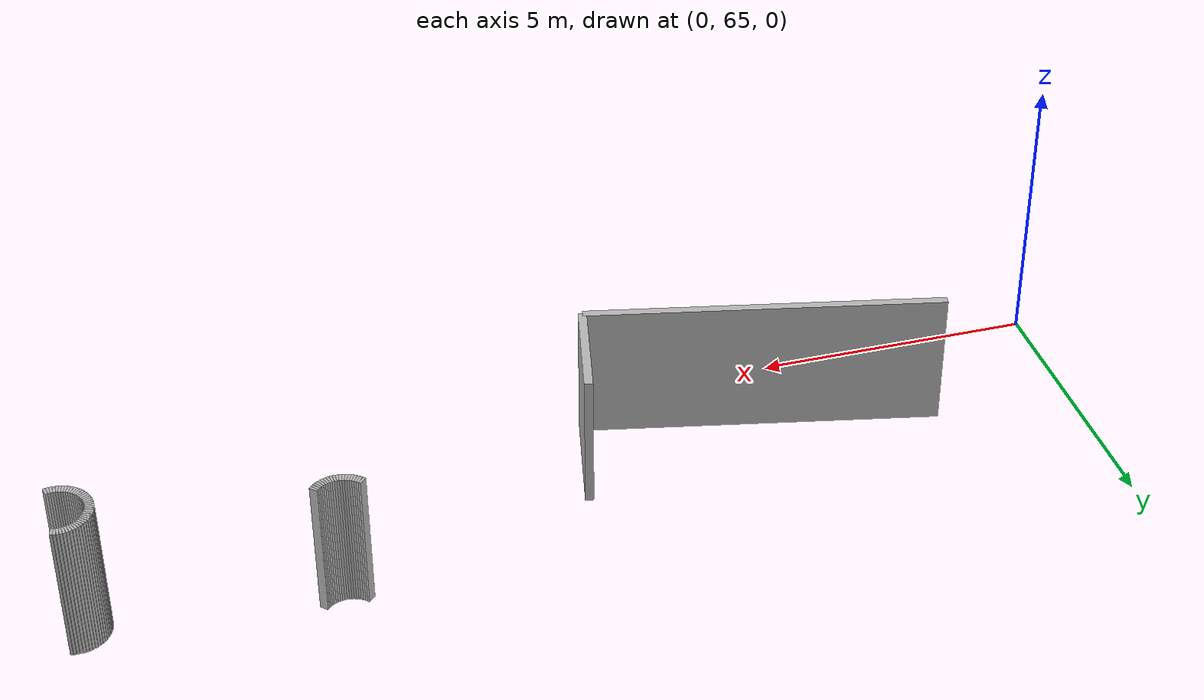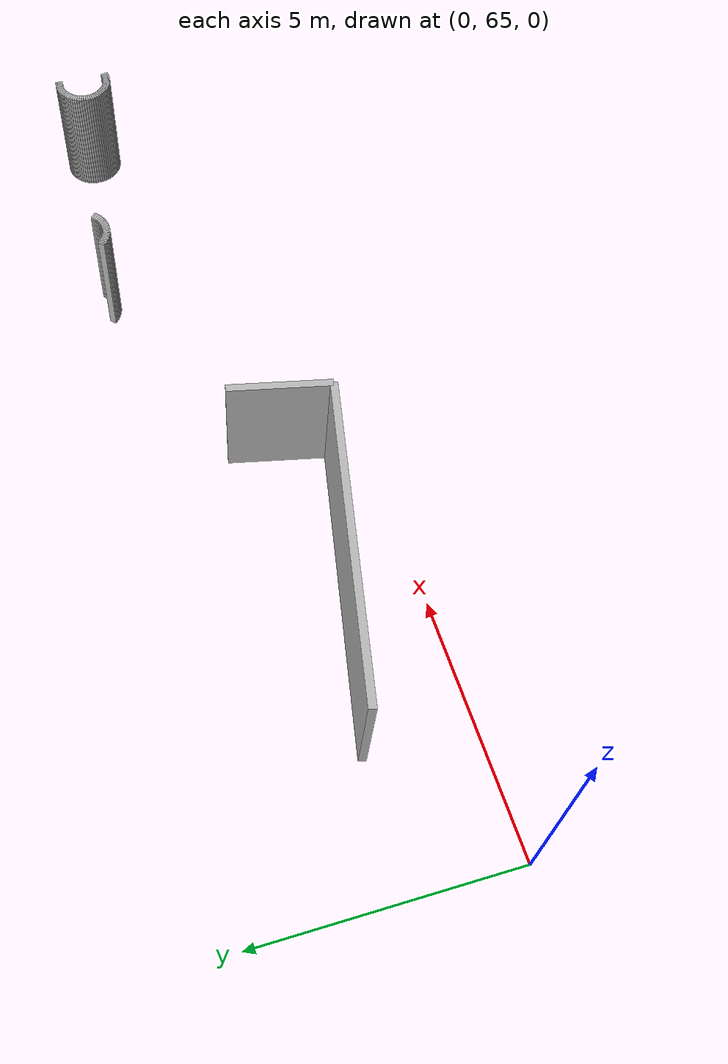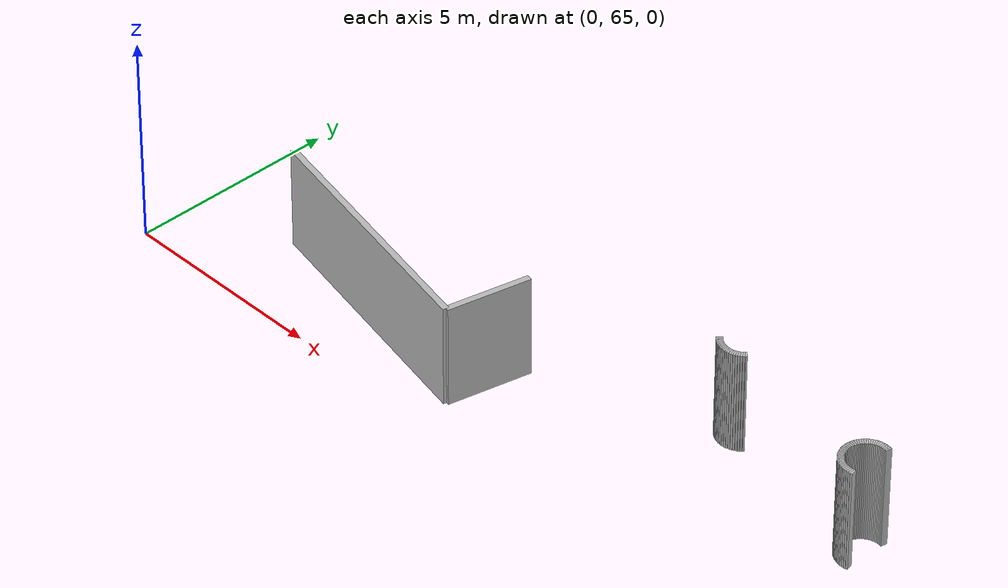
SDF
<sdf version="1.6">
 <model name="sps_1002">
  <static>1</static>
  <allow_auto_disable>0</allow_auto_disable>
  <link name="Wall810">
   <collision name="collision"><geometry><box><size>0.0454476 0.15 2.5</size></box></geometry></collision>
   <visual name="visual">
    <geometry><box><size>0.0454476 0.15 2.5</size></box></geometry>
    <transparency>0.0</transparency>
   </visual>
   <pose>18.0326 68.093 1.25 0 0 -2.92365</pose>
  </link>
  <link name="Wall811">
   <collision name="collision"><geometry><box><size>0.0453551 0.15 2.5</size></box></geometry></collision>
   <visual name="visual">
    <geometry><box><size>0.0453551 0.15 2.5</size></box></geometry>
    <transparency>0.0</transparency>
   </visual>
   <pose>17.988 68.0852 1.25 0 0 -3.0134</pose>
  </link>
  <link name="Wall812">
   <collision name="collision"><geometry><box><size>0.0454548 0.15 2.5</size></box></geometry></collision>
   <visual name="visual">
    <geometry><box><size>0.0454548 0.15 2.5</size></box></geometry>
    <transparency>0.0</transparency>
   </visual>
   <pose>17.9428 68.0813 1.25 0 0 -3.09727</pose>
  </link>
  <link name="Wall813">
   <collision name="collision"><geometry><box><size>0.0452719 0.15 2.5</size></box></geometry></collision>
   <visual name="visual">
    <geometry><box><size>0.0452719 0.15 2.5</size></box></geometry>
    <transparency>0.0</transparency>
   </visual>
   <pose>17.8975 68.0813 1.25 0 -0 3.09709</pose>
  </link>
  <link name="Wall814">
   <collision name="collision"><geometry><box><size>0.0453788 0.15 2.5</size></box></geometry></collision>
   <visual name="visual">
    <geometry><box><size>0.0453788 0.15 2.5</size></box></geometry>
    <transparency>0.0</transparency>
   </visual>
   <pose>17.8523 68.0853 1.25 0 -0 3.0094</pose>
  </link>
  <link name="Wall815">
   <collision name="collision"><geometry><box><size>0.0454476 0.15 2.5</size></box></geometry></collision>
   <visual name="visual">
    <geometry><box><size>0.0454476 0.15 2.5</size></box></geometry>
    <transparency>0.0</transparency>
   </visual>
   <pose>17.8077 68.0932 1.25 0 -0 2.92365</pose>
  </link>
  <link name="Wall816">
   <collision name="collision"><geometry><box><size>0.0453057 0.15 2.5</size></box></geometry></collision>
   <visual name="visual">
    <geometry><box><size>0.0453057 0.15 2.5</size></box></geometry>
    <transparency>0.0</transparency>
   </visual>
   <pose>17.7639 68.1049 1.25 0 -0 2.83646</pose>
  </link>
  <link name="Wall817">
   <collision name="collision"><geometry><box><size>0.0452834 0.15 2.5</size></box></geometry></collision>
   <visual name="visual">
    <geometry><box><size>0.0452834 0.15 2.5</size></box></geometry>
    <transparency>0.0</transparency>
   </visual>
   <pose>17.7214 68.1204 1.25 0 -0 2.74732</pose>
  </link>
  <link name="Wall818">
   <collision name="collision"><geometry><box><size>0.045288 0.15 2.5</size></box></geometry></collision>
   <visual name="visual">
    <geometry><box><size>0.045288 0.15 2.5</size></box></geometry>
    <transparency>0.0</transparency>
   </visual>
   <pose>17.6804 68.1395 1.25 0 -0 2.66408</pose>
  </link>
  <link name="Wall819">
   <collision name="collision"><geometry><box><size>0.0454637 0.15 2.5</size></box></geometry></collision>
   <visual name="visual">
    <geometry><box><size>0.0454637 0.15 2.5</size></box></geometry>
    <transparency>0.0</transparency>
   </visual>
   <pose>17.641 68.1621 1.25 0 -0 2.5763</pose>
  </link>
  <link name="Wall820">
   <collision name="collision"><geometry><box><size>0.0455126 0.15 2.5</size></box></geometry></collision>
   <visual name="visual">
    <geometry><box><size>0.0455126 0.15 2.5</size></box></geometry>
    <transparency>0.0</transparency>
   </visual>
   <pose>17.6038 68.1882 1.25 0 -0 2.48361</pose>
  </link>
  <link name="Wall821">
   <collision name="collision"><geometry><box><size>0.0452735 0.15 2.5</size></box></geometry></collision>
   <visual name="visual">
    <geometry><box><size>0.0452735 0.15 2.5</size></box></geometry>
    <transparency>0.0</transparency>
   </visual>
   <pose>17.5691 68.2174 1.25 0 -0 2.40006</pose>
  </link>
  <link name="Wall822">
   <collision name="collision"><geometry><box><size>0.0452735 0.15 2.5</size></box></geometry></collision>
   <visual name="visual">
    <geometry><box><size>0.0452735 0.15 2.5</size></box></geometry>
    <transparency>0.0</transparency>
   </visual>
   <pose>17.5372 68.2494 1.25 0 -0 2.31233</pose>
  </link>
  <link name="Wall823">
   <collision name="collision"><geometry><box><size>0.0453637 0.15 2.5</size></box></geometry></collision>
   <visual name="visual">
    <geometry><box><size>0.0453637 0.15 2.5</size></box></geometry>
    <transparency>0.0</transparency>
   </visual>
   <pose>17.5081 68.2841 1.25 0 -0 2.22452</pose>
  </link>
  <link name="Wall824">
   <collision name="collision"><geometry><box><size>0.0454964 0.15 2.5</size></box></geometry></collision>
   <visual name="visual">
    <geometry><box><size>0.0454964 0.15 2.5</size></box></geometry>
    <transparency>0.0</transparency>
   </visual>
   <pose>17.4821 68.3213 1.25 0 -0 2.13722</pose>
  </link>
  <link name="Wall825">
   <collision name="collision"><geometry><box><size>0.0453724 0.15 2.5</size></box></geometry></collision>
   <visual name="visual">
    <geometry><box><size>0.0453724 0.15 2.5</size></box></geometry>
    <transparency>0.0</transparency>
   </visual>
   <pose>17.4594 68.3606 1.25 0 -0 2.05189</pose>
  </link>
  <link name="Wall826">
   <collision name="collision"><geometry><box><size>0.0452134 0.15 2.5</size></box></geometry></collision>
   <visual name="visual">
    <geometry><box><size>0.0452134 0.15 2.5</size></box></geometry>
    <transparency>0.0</transparency>
   </visual>
   <pose>17.4403 68.4016 1.25 0 -0 1.96133</pose>
  </link>
  <link name="Wall827">
   <collision name="collision"><geometry><box><size>0.0454804 0.15 2.5</size></box></geometry></collision>
   <visual name="visual">
    <geometry><box><size>0.0454804 0.15 2.5</size></box></geometry>
    <transparency>0.0</transparency>
   </visual>
   <pose>17.4249 68.4442 1.25 0 -0 1.87472</pose>
  </link>
  <link name="Wall828">
   <collision name="collision"><geometry><box><size>0.045309 0.15 2.5</size></box></geometry></collision>
   <visual name="visual">
    <geometry><box><size>0.045309 0.15 2.5</size></box></geometry>
    <transparency>0.0</transparency>
   </visual>
   <pose>17.413 68.488 1.25 0 -0 1.79356</pose>
  </link>
  <link name="Wall829">
   <collision name="collision"><geometry><box><size>0.0453551 0.15 2.5</size></box></geometry></collision>
   <visual name="visual">
    <geometry><box><size>0.0453551 0.15 2.5</size></box></geometry>
    <transparency>0.0</transparency>
   </visual>
   <pose>17.4051 68.5326 1.25 0 -0 1.69899</pose>
  </link>
  <link name="Wall830">
   <collision name="collision"><geometry><box><size>0.0454548 0.15 2.5</size></box></geometry></collision>
   <visual name="visual">
    <geometry><box><size>0.0454548 0.15 2.5</size></box></geometry>
    <transparency>0.0</transparency>
   </visual>
   <pose>17.4012 68.5778 1.25 0 -0 1.61512</pose>
  </link>
  <link name="Wall831">
   <collision name="collision"><geometry><box><size>0.0452719 0.15 2.5</size></box></geometry></collision>
   <visual name="visual">
    <geometry><box><size>0.0452719 0.15 2.5</size></box></geometry>
    <transparency>0.0</transparency>
   </visual>
   <pose>17.4012 68.6231 1.25 0 -0 1.52629</pose>
  </link>
  <link name="Wall832">
   <collision name="collision"><geometry><box><size>0.0453788 0.15 2.5</size></box></geometry></collision>
   <visual name="visual">
    <geometry><box><size>0.0453788 0.15 2.5</size></box></geometry>
    <transparency>0.0</transparency>
   </visual>
   <pose>17.4052 68.6682 1.25 0 -0 1.4386</pose>
  </link>
  <link name="Wall833">
   <collision name="collision"><geometry><box><size>0.0452689 0.15 2.5</size></box></geometry></collision>
   <visual name="visual">
    <geometry><box><size>0.0452689 0.15 2.5</size></box></geometry>
    <transparency>0.0</transparency>
   </visual>
   <pose>17.4131 68.7128 1.25 0 -0 1.35198</pose>
  </link>
  <link name="Wall834">
   <collision name="collision"><geometry><box><size>0.0454804 0.15 2.5</size></box></geometry></collision>
   <visual name="visual">
    <geometry><box><size>0.0454804 0.15 2.5</size></box></geometry>
    <transparency>0.0</transparency>
   </visual>
   <pose>17.4249 68.7566 1.25 0 -0 1.26687</pose>
  </link>
  <link name="Wall835">
   <collision name="collision"><geometry><box><size>0.0452834 0.15 2.5</size></box></geometry></collision>
   <visual name="visual">
    <geometry><box><size>0.0452834 0.15 2.5</size></box></geometry>
    <transparency>0.0</transparency>
   </visual>
   <pose>17.4404 68.7992 1.25 0 -0 1.17652</pose>
  </link>
  <link name="Wall836">
   <collision name="collision"><geometry><box><size>0.0455348 0.15 2.5</size></box></geometry></collision>
   <visual name="visual">
    <geometry><box><size>0.0455348 0.15 2.5</size></box></geometry>
    <transparency>0.0</transparency>
   </visual>
   <pose>17.4596 68.8403 1.25 0 -0 1.09156</pose>
  </link>
  <link name="Wall837">
   <collision name="collision"><geometry><box><size>0.045342 0.15 2.5</size></box></geometry></collision>
   <visual name="visual">
    <geometry><box><size>0.045342 0.15 2.5</size></box></geometry>
    <transparency>0.0</transparency>
   </visual>
   <pose>17.4823 68.8796 1.25 0 -0 1.00221</pose>
  </link>
  <link name="Wall838">
   <collision name="collision"><geometry><box><size>0.0453637 0.15 2.5</size></box></geometry></collision>
   <visual name="visual">
    <geometry><box><size>0.0453637 0.15 2.5</size></box></geometry>
    <transparency>0.0</transparency>
   </visual>
   <pose>17.5083 68.9167 1.25 0 -0 0.91707</pose>
  </link>
  <link name="Wall839">
   <collision name="collision"><geometry><box><size>0.0452735 0.15 2.5</size></box></geometry></collision>
   <visual name="visual">
    <geometry><box><size>0.0452735 0.15 2.5</size></box></geometry>
    <transparency>0.0</transparency>
   </visual>
   <pose>17.5373 68.9514 1.25 0 -0 0.829263</pose>
  </link>
  <link name="Wall840">
   <collision name="collision"><geometry><box><size>0.0453186 0.15 2.5</size></box></geometry></collision>
   <visual name="visual">
    <geometry><box><size>0.0453186 0.15 2.5</size></box></geometry>
    <transparency>0.0</transparency>
   </visual>
   <pose>17.5694 68.9834 1.25 0 -0 0.740624</pose>
  </link>
  <link name="Wall841">
   <collision name="collision"><geometry><box><size>0.0453524 0.15 2.5</size></box></geometry></collision>
   <visual name="visual">
    <geometry><box><size>0.0453524 0.15 2.5</size></box></geometry>
    <transparency>0.0</transparency>
   </visual>
   <pose>17.6041 69.0125 1.25 0 -0 0.655614</pose>
  </link>
  <link name="Wall842">
   <collision name="collision"><geometry><box><size>0.0455152 0.15 2.5</size></box></geometry></collision>
   <visual name="visual">
    <geometry><box><size>0.0455152 0.15 2.5</size></box></geometry>
    <transparency>0.0</transparency>
   </visual>
   <pose>17.6413 69.0385 1.25 0 -0 0.564569</pose>
  </link>
  <link name="Wall843">
   <collision name="collision"><geometry><box><size>0.0453183 0.15 2.5</size></box></geometry></collision>
   <visual name="visual">
    <geometry><box><size>0.0453183 0.15 2.5</size></box></geometry>
    <transparency>0.0</transparency>
   </visual>
   <pose>17.6806 69.0612 1.25 0 -0 0.481718</pose>
  </link>
  <link name="Wall844">
   <collision name="collision"><geometry><box><size>0.0453827 0.15 2.5</size></box></geometry></collision>
   <visual name="visual">
    <geometry><box><size>0.0453827 0.15 2.5</size></box></geometry>
    <transparency>0.0</transparency>
   </visual>
   <pose>17.7216 69.0803 1.25 0 -0 0.388998</pose>
  </link>
  <link name="Wall845">
   <collision name="collision"><geometry><box><size>0.0453611 0.15 2.5</size></box></geometry></collision>
   <visual name="visual">
    <geometry><box><size>0.0453611 0.15 2.5</size></box></geometry>
    <transparency>0.0</transparency>
   </visual>
   <pose>17.7642 69.0958 1.25 0 -0 0.308985</pose>
  </link>
  <link name="Wall846">
   <collision name="collision"><geometry><box><size>0.0452295 0.15 2.5</size></box></geometry></collision>
   <visual name="visual">
    <geometry><box><size>0.0452295 0.15 2.5</size></box></geometry>
    <transparency>0.0</transparency>
   </visual>
   <pose>17.8079 69.1075 1.25 0 -0 0.214863</pose>
  </link>
  <link name="Wall847">
   <collision name="collision"><geometry><box><size>0.0454394 0.15 2.5</size></box></geometry></collision>
   <visual name="visual">
    <geometry><box><size>0.0454394 0.15 2.5</size></box></geometry>
    <transparency>0.0</transparency>
   </visual>
   <pose>17.8526 69.1153 1.25 0 -0 0.132019</pose>
  </link>
  <link name="Wall848">
   <collision name="collision"><geometry><box><size>0.0453938 0.15 2.5</size></box></geometry></collision>
   <visual name="visual">
    <geometry><box><size>0.0453938 0.15 2.5</size></box></geometry>
    <transparency>0.0</transparency>
   </visual>
   <pose>17.8978 69.1193 1.25 0 -0 0.0443854</pose>
  </link>
  <link name="Wall849">
   <collision name="collision"><geometry><box><size>0.0454548 0.15 2.5</size></box></geometry></collision>
   <visual name="visual">
    <geometry><box><size>0.0454548 0.15 2.5</size></box></geometry>
    <transparency>0.0</transparency>
   </visual>
   <pose>17.9431 69.1193 1.25 0 0 -0.0443258</pose>
  </link>
  <link name="Wall850">
   <collision name="collision"><geometry><box><size>0.0451973 0.15 2.5</size></box></geometry></collision>
   <visual name="visual">
    <geometry><box><size>0.0451973 0.15 2.5</size></box></geometry>
    <transparency>0.0</transparency>
   </visual>
   <pose>17.9882 69.1153 1.25 0 0 -0.13273</pose>
  </link>
  <link name="Wall851">
   <collision name="collision"><geometry><box><size>0.0455072 0.15 2.5</size></box></geometry></collision>
   <visual name="visual">
    <geometry><box><size>0.0455072 0.15 2.5</size></box></geometry>
    <transparency>0.0</transparency>
   </visual>
   <pose>18.0329 69.1074 1.25 0 0 -0.217651</pose>
  </link>
  <link name="Wall860">
   <collision name="collision"><geometry><box><size>2.01459 0.15 2.5</size></box></geometry></collision>
   <visual name="visual">
    <geometry><box><size>2.01459 0.15 2.5</size></box></geometry>
    <transparency>0.0</transparency>
   </visual>
   <pose>8.89355 66.7664 1.25 0 0 -1.78496</pose>
  </link>
  <link name="Wall861">
   <collision name="collision"><geometry><box><size>6.36004 0.15 2.5</size></box></geometry></collision>
   <visual name="visual">
    <geometry><box><size>6.36004 0.15 2.5</size></box></geometry>
    <transparency>0.0</transparency>
   </visual>
   <pose>5.57217 66.4583 1.25 0 -0 2.92732</pose>
  </link>
  <link name="Wall2019">
   <collision name="collision"><geometry><box><size>0.0453148 0.15 2.5</size></box></geometry></collision>
   <visual name="visual">
    <geometry><box><size>0.0453148 0.15 2.5</size></box></geometry>
    <transparency>0.0</transparency>
   </visual>
   <pose>13.974 69.1914 1.25 0 0 -2.31332</pose>
  </link>
  <link name="Wall2020">
   <collision name="collision"><geometry><box><size>0.0455735 0.15 2.5</size></box></geometry></collision>
   <visual name="visual">
    <geometry><box><size>0.0455735 0.15 2.5</size></box></geometry>
    <transparency>0.0</transparency>
   </visual>
   <pose>13.9419 69.1593 1.25 0 0 -2.39882</pose>
  </link>
  <link name="Wall2021">
   <collision name="collision"><geometry><box><size>0.0453637 0.15 2.5</size></box></geometry></collision>
   <visual name="visual">
    <geometry><box><size>0.0453637 0.15 2.5</size></box></geometry>
    <transparency>0.0</transparency>
   </visual>
   <pose>13.9071 69.1301 1.25 0 0 -2.48787</pose>
  </link>
  <link name="Wall2022">
   <collision name="collision"><geometry><box><size>0.045342 0.15 2.5</size></box></geometry></collision>
   <visual name="visual">
    <geometry><box><size>0.045342 0.15 2.5</size></box></geometry>
    <transparency>0.0</transparency>
   </visual>
   <pose>13.87 69.1041 1.25 0 0 -2.57301</pose>
  </link>
  <link name="Wall2023">
   <collision name="collision"><geometry><box><size>0.04526 0.15 2.5</size></box></geometry></collision>
   <visual name="visual">
    <geometry><box><size>0.04526 0.15 2.5</size></box></geometry>
    <transparency>0.0</transparency>
   </visual>
   <pose>13.8307 69.0815 1.25 0 0 -2.66528</pose>
  </link>
  <link name="Wall2024">
   <collision name="collision"><geometry><box><size>0.0454759 0.15 2.5</size></box></geometry></collision>
   <visual name="visual">
    <geometry><box><size>0.0454759 0.15 2.5</size></box></geometry>
    <transparency>0.0</transparency>
   </visual>
   <pose>13.7896 69.0624 1.25 0 0 -2.74763</pose>
  </link>
  <link name="Wall2025">
   <collision name="collision"><geometry><box><size>0.0452292 0.15 2.5</size></box></geometry></collision>
   <visual name="visual">
    <geometry><box><size>0.0452292 0.15 2.5</size></box></geometry>
    <transparency>0.0</transparency>
   </visual>
   <pose>13.7471 69.0469 1.25 0 0 -2.83734</pose>
  </link>
  <link name="Wall2026">
   <collision name="collision"><geometry><box><size>0.0455072 0.15 2.5</size></box></geometry></collision>
   <visual name="visual">
    <geometry><box><size>0.0455072 0.15 2.5</size></box></geometry>
    <transparency>0.0</transparency>
   </visual>
   <pose>13.7033 69.0352 1.25 0 0 -2.92394</pose>
  </link>
  <link name="Wall2027">
   <collision name="collision"><geometry><box><size>0.0453788 0.15 2.5</size></box></geometry></collision>
   <visual name="visual">
    <geometry><box><size>0.0453788 0.15 2.5</size></box></geometry>
    <transparency>0.0</transparency>
   </visual>
   <pose>13.6586 69.0273 1.25 0 0 -3.0094</pose>
  </link>
  <link name="Wall2028">
   <collision name="collision"><geometry><box><size>0.0452641 0.15 2.5</size></box></geometry></collision>
   <visual name="visual">
    <geometry><box><size>0.0452641 0.15 2.5</size></box></geometry>
    <transparency>0.0</transparency>
   </visual>
   <pose>13.6135 69.0234 1.25 0 0 -3.10113</pose>
  </link>
  <link name="Wall2029">
   <collision name="collision"><geometry><box><size>0.0454548 0.15 2.5</size></box></geometry></collision>
   <visual name="visual">
    <geometry><box><size>0.0454548 0.15 2.5</size></box></geometry>
    <transparency>0.0</transparency>
   </visual>
   <pose>13.5681 69.0235 1.25 0 -0 3.09727</pose>
  </link>
  <link name="Wall2030">
   <collision name="collision"><geometry><box><size>0.0453551 0.15 2.5</size></box></geometry></collision>
   <visual name="visual">
    <geometry><box><size>0.0453551 0.15 2.5</size></box></geometry>
    <transparency>0.0</transparency>
   </visual>
   <pose>13.5229 69.0274 1.25 0 -0 3.0134</pose>
  </link>
  <link name="Wall2031">
   <collision name="collision"><geometry><box><size>0.0452689 0.15 2.5</size></box></geometry></collision>
   <visual name="visual">
    <geometry><box><size>0.0452689 0.15 2.5</size></box></geometry>
    <transparency>0.0</transparency>
   </visual>
   <pose>13.4784 69.0352 1.25 0 -0 2.92278</pose>
  </link>
  <link name="Wall2032">
   <collision name="collision"><geometry><box><size>0.0453611 0.15 2.5</size></box></geometry></collision>
   <visual name="visual">
    <geometry><box><size>0.0453611 0.15 2.5</size></box></geometry>
    <transparency>0.0</transparency>
   </visual>
   <pose>13.4347 69.047 1.25 0 -0 2.83261</pose>
  </link>
  <link name="Wall2033">
   <collision name="collision"><geometry><box><size>0.0453827 0.15 2.5</size></box></geometry></collision>
   <visual name="visual">
    <geometry><box><size>0.0453827 0.15 2.5</size></box></geometry>
    <transparency>0.0</transparency>
   </visual>
   <pose>13.3921 69.0625 1.25 0 -0 2.75259</pose>
  </link>
  <link name="Wall2034">
   <collision name="collision"><geometry><box><size>0.0453724 0.15 2.5</size></box></geometry></collision>
   <visual name="visual">
    <geometry><box><size>0.0453724 0.15 2.5</size></box></geometry>
    <transparency>0.0</transparency>
   </visual>
   <pose>13.3509 69.0816 1.25 0 -0 2.6605</pose>
  </link>
  <link name="Wall2035">
   <collision name="collision"><geometry><box><size>0.0452577 0.15 2.5</size></box></geometry></collision>
   <visual name="visual">
    <geometry><box><size>0.0452577 0.15 2.5</size></box></geometry>
    <transparency>0.0</transparency>
   </visual>
   <pose>13.3118 69.1043 1.25 0 -0 2.57342</pose>
  </link>
  <link name="Wall2036">
   <collision name="collision"><geometry><box><size>0.0454008 0.15 2.5</size></box></geometry></collision>
   <visual name="visual">
    <geometry><box><size>0.0454008 0.15 2.5</size></box></geometry>
    <transparency>0.0</transparency>
   </visual>
   <pose>13.2747 69.1303 1.25 0 -0 2.4868</pose>
  </link>
  <link name="Wall2037">
   <collision name="collision"><geometry><box><size>0.0455772 0.15 2.5</size></box></geometry></collision>
   <visual name="visual">
    <geometry><box><size>0.0455772 0.15 2.5</size></box></geometry>
    <transparency>0.0</transparency>
   </visual>
   <pose>13.2399 69.1595 1.25 0 -0 2.40071</pose>
  </link>
  <link name="Wall2038">
   <collision name="collision"><geometry><box><size>0.0452735 0.15 2.5</size></box></geometry></collision>
   <visual name="visual">
    <geometry><box><size>0.0452735 0.15 2.5</size></box></geometry>
    <transparency>0.0</transparency>
   </visual>
   <pose>13.2078 69.1916 1.25 0 -0 2.31233</pose>
  </link>
 </model>
</sdf>
